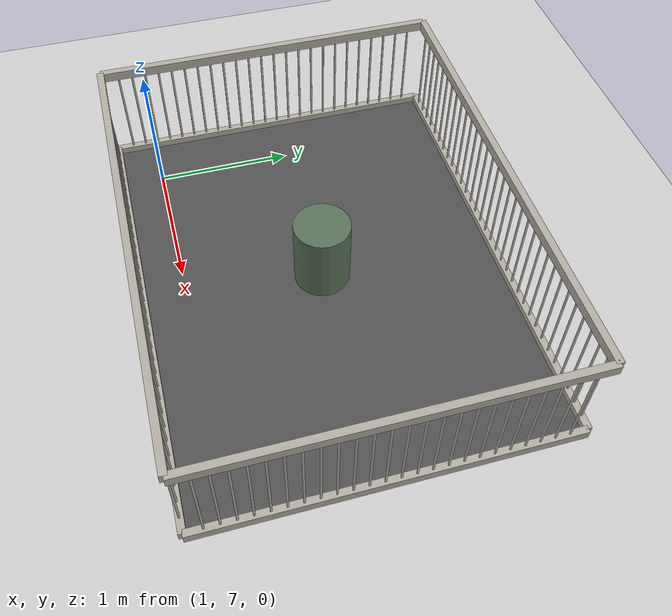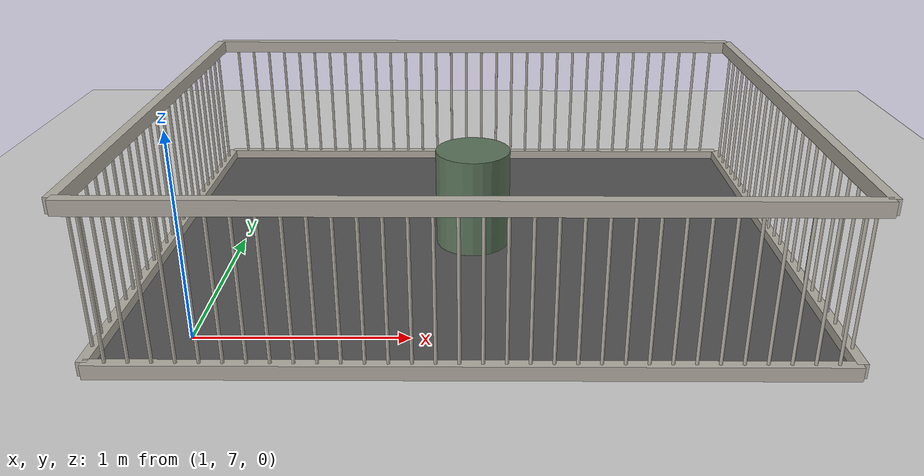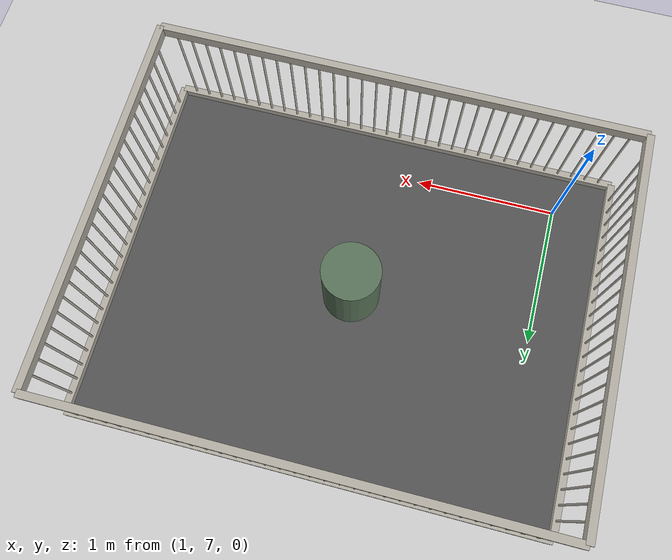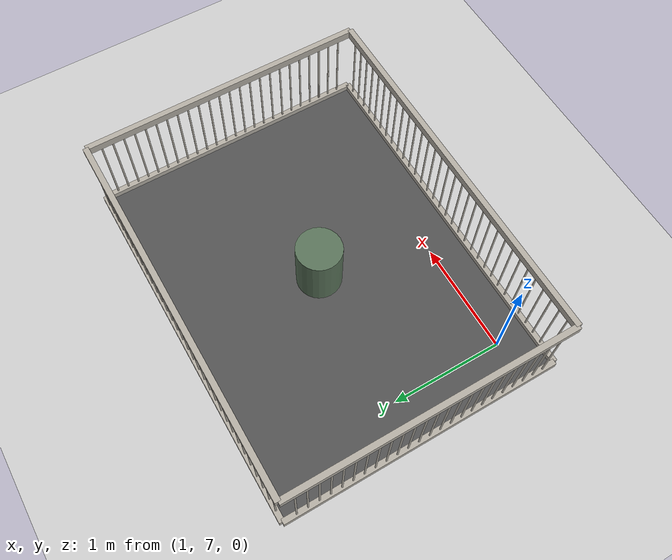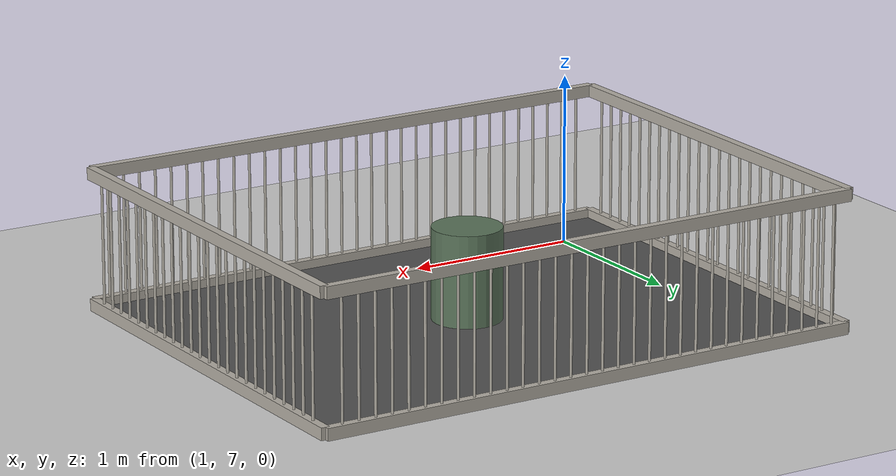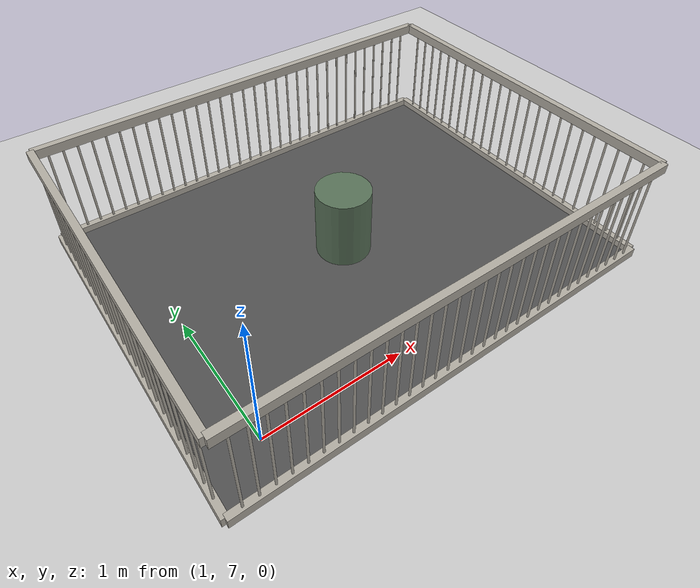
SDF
<sdf version="1.9">
 <world name="pig_pen_16units_world">
  <model name="ground_plane">
   <static>true</static>
   <link name="link">
    <collision name="collision">
     <geometry><plane><normal>0 0 1</normal><size>30 30</size></plane></geometry>
     <surface><friction><ode><mu>1.0</mu><mu2>1.0</mu2></ode></friction></surface>
    </collision>
    <visual name="visual">
     <geometry><plane><normal>0 0 1</normal><size>30 30</size></plane></geometry>
     <material>
      <ambient>0.8 0.8 0.8 1</ambient>
      <diffuse>0.8 0.8 0.8 1</diffuse>
      <specular>0.2 0.2 0.2 1</specular>
     </material>
    </visual>
   </link>
  </model>
  <model name="pen16">
   <pose>2.275 7.975 0 0 0 0</pose>
   <static>true</static>
   <link name="floor">
    <pose>0 0 0.01 0 0 0</pose>
    <collision name="collision"><geometry><box><size>3.30 2.55 0.02</size></box></geometry></collision>
    <visual name="visual">
     <geometry><box><size>3.30 2.55 0.02</size></box></geometry>
     <material>
      <ambient>0.25 0.25 0.25 1</ambient>
      <diffuse>0.32 0.32 0.32 1</diffuse>
      <specular>0.05 0.05 0.05 1</specular>
     </material>
    </visual>
   </link>
   <link name="left_wall">
    <pose>0 1.275 0.415 0 0 0</pose>
    <collision name="top_rail_col">
     <pose>0 0 0.38 0 0 0</pose>
     <geometry><box><size>3.30 0.05 0.07</size></box></geometry>
    </collision>
    <visual name="top_rail_vis">
     <pose>0 0 0.38 0 0 0</pose>
     <geometry><box><size>3.30 0.05 0.07</size></box></geometry>
     <material><ambient>0.70 0.68 0.64 1</ambient><diffuse>0.70 0.68 0.64 1</diffuse></material>
    </visual>
    <collision name="bottom_rail_col">
     <pose>0 0 -0.38 0 0 0</pose>
     <geometry><box><size>3.30 0.05 0.07</size></box></geometry>
    </collision>
    <visual name="bottom_rail_vis">
     <pose>0 0 -0.38 0 0 0</pose>
     <geometry><box><size>3.30 0.05 0.07</size></box></geometry>
     <material><ambient>0.70 0.68 0.64 1</ambient><diffuse>0.70 0.68 0.64 1</diffuse></material>
    </visual>
    <collision name="bar_01_col">
     <pose>-1.55 0 0 0 0 0</pose>
     <geometry><cylinder><radius>0.0075</radius><length>0.69</length></cylinder></geometry>
    </collision>
    <visual name="bar_01_vis">
     <pose>-1.55 0 0 0 0 0</pose>
     <geometry><cylinder><radius>0.0075</radius><length>0.69</length></cylinder></geometry>
     <material><ambient>0.70 0.68 0.64 1</ambient><diffuse>0.70 0.68 0.64 1</diffuse></material>
    </visual>
    <collision name="bar_02_col">
     <pose>-1.45 0 0 0 0 0</pose>
     <geometry><cylinder><radius>0.0075</radius><length>0.69</length></cylinder></geometry>
    </collision>
    <visual name="bar_02_vis">
     <pose>-1.45 0 0 0 0 0</pose>
     <geometry><cylinder><radius>0.0075</radius><length>0.69</length></cylinder></geometry>
     <material><ambient>0.70 0.68 0.64 1</ambient><diffuse>0.70 0.68 0.64 1</diffuse></material>
    </visual>
    <collision name="bar_03_col">
     <pose>-1.35 0 0 0 0 0</pose>
     <geometry><cylinder><radius>0.0075</radius><length>0.69</length></cylinder></geometry>
    </collision>
    <visual name="bar_03_vis">
     <pose>-1.35 0 0 0 0 0</pose>
     <geometry><cylinder><radius>0.0075</radius><length>0.69</length></cylinder></geometry>
     <material><ambient>0.70 0.68 0.64 1</ambient><diffuse>0.70 0.68 0.64 1</diffuse></material>
    </visual>
    <collision name="bar_04_col">
     <pose>-1.25 0 0 0 0 0</pose>
     <geometry><cylinder><radius>0.0075</radius><length>0.69</length></cylinder></geometry>
    </collision>
    <visual name="bar_04_vis">
     <pose>-1.25 0 0 0 0 0</pose>
     <geometry><cylinder><radius>0.0075</radius><length>0.69</length></cylinder></geometry>
     <material><ambient>0.70 0.68 0.64 1</ambient><diffuse>0.70 0.68 0.64 1</diffuse></material>
    </visual>
    <collision name="bar_05_col">
     <pose>-1.15 0 0 0 0 0</pose>
     <geometry><cylinder><radius>0.0075</radius><length>0.69</length></cylinder></geometry>
    </collision>
    <visual name="bar_05_vis">
     <pose>-1.15 0 0 0 0 0</pose>
     <geometry><cylinder><radius>0.0075</radius><length>0.69</length></cylinder></geometry>
     <material><ambient>0.70 0.68 0.64 1</ambient><diffuse>0.70 0.68 0.64 1</diffuse></material>
    </visual>
    <collision name="bar_06_col">
     <pose>-1.05 0 0 0 0 0</pose>
     <geometry><cylinder><radius>0.0075</radius><length>0.69</length></cylinder></geometry>
    </collision>
    <visual name="bar_06_vis">
     <pose>-1.05 0 0 0 0 0</pose>
     <geometry><cylinder><radius>0.0075</radius><length>0.69</length></cylinder></geometry>
     <material><ambient>0.70 0.68 0.64 1</ambient><diffuse>0.70 0.68 0.64 1</diffuse></material>
    </visual>
    <collision name="bar_07_col">
     <pose>-0.95 0 0 0 0 0</pose>
     <geometry><cylinder><radius>0.0075</radius><length>0.69</length></cylinder></geometry>
    </collision>
    <visual name="bar_07_vis">
     <pose>-0.95 0 0 0 0 0</pose>
     <geometry><cylinder><radius>0.0075</radius><length>0.69</length></cylinder></geometry>
     <material><ambient>0.70 0.68 0.64 1</ambient><diffuse>0.70 0.68 0.64 1</diffuse></material>
    </visual>
    <collision name="bar_08_col">
     <pose>-0.85 0 0 0 0 0</pose>
     <geometry><cylinder><radius>0.0075</radius><length>0.69</length></cylinder></geometry>
    </collision>
    <visual name="bar_08_vis">
     <pose>-0.85 0 0 0 0 0</pose>
     <geometry><cylinder><radius>0.0075</radius><length>0.69</length></cylinder></geometry>
     <material><ambient>0.70 0.68 0.64 1</ambient><diffuse>0.70 0.68 0.64 1</diffuse></material>
    </visual>
    <collision name="bar_09_col">
     <pose>-0.75 0 0 0 0 0</pose>
     <geometry><cylinder><radius>0.0075</radius><length>0.69</length></cylinder></geometry>
    </collision>
    <visual name="bar_09_vis">
     <pose>-0.75 0 0 0 0 0</pose>
     <geometry><cylinder><radius>0.0075</radius><length>0.69</length></cylinder></geometry>
     <material><ambient>0.70 0.68 0.64 1</ambient><diffuse>0.70 0.68 0.64 1</diffuse></material>
    </visual>
    <collision name="bar_10_col">
     <pose>-0.65 0 0 0 0 0</pose>
     <geometry><cylinder><radius>0.0075</radius><length>0.69</length></cylinder></geometry>
    </collision>
    <visual name="bar_10_vis">
     <pose>-0.65 0 0 0 0 0</pose>
     <geometry><cylinder><radius>0.0075</radius><length>0.69</length></cylinder></geometry>
     <material><ambient>0.70 0.68 0.64 1</ambient><diffuse>0.70 0.68 0.64 1</diffuse></material>
    </visual>
    <collision name="bar_11_col">
     <pose>-0.55 0 0 0 0 0</pose>
     <geometry><cylinder><radius>0.0075</radius><length>0.69</length></cylinder></geometry>
    </collision>
    <visual name="bar_11_vis">
     <pose>-0.55 0 0 0 0 0</pose>
     <geometry><cylinder><radius>0.0075</radius><length>0.69</length></cylinder></geometry>
     <material><ambient>0.70 0.68 0.64 1</ambient><diffuse>0.70 0.68 0.64 1</diffuse></material>
    </visual>
    <collision name="bar_12_col">
     <pose>-0.45 0 0 0 0 0</pose>
     <geometry><cylinder><radius>0.0075</radius><length>0.69</length></cylinder></geometry>
    </collision>
    <visual name="bar_12_vis">
     <pose>-0.45 0 0 0 0 0</pose>
     <geometry><cylinder><radius>0.0075</radius><length>0.69</length></cylinder></geometry>
     <material><ambient>0.70 0.68 0.64 1</ambient><diffuse>0.70 0.68 0.64 1</diffuse></material>
    </visual>
    <collision name="bar_13_col">
     <pose>-0.35 0 0 0 0 0</pose>
     <geometry><cylinder><radius>0.0075</radius><length>0.69</length></cylinder></geometry>
    </collision>
    <visual name="bar_13_vis">
     <pose>-0.35 0 0 0 0 0</pose>
     <geometry><cylinder><radius>0.0075</radius><length>0.69</length></cylinder></geometry>
     <material><ambient>0.70 0.68 0.64 1</ambient><diffuse>0.70 0.68 0.64 1</diffuse></material>
    </visual>
    <collision name="bar_14_col">
     <pose>-0.25 0 0 0 0 0</pose>
     <geometry><cylinder><radius>0.0075</radius><length>0.69</length></cylinder></geometry>
    </collision>
    <visual name="bar_14_vis">
     <pose>-0.25 0 0 0 0 0</pose>
     <geometry><cylinder><radius>0.0075</radius><length>0.69</length></cylinder></geometry>
     <material><ambient>0.70 0.68 0.64 1</ambient><diffuse>0.70 0.68 0.64 1</diffuse></material>
    </visual>
    <collision name="bar_15_col">
     <pose>-0.15 0 0 0 0 0</pose>
     <geometry><cylinder><radius>0.0075</radius><length>0.69</length></cylinder></geometry>
    </collision>
    <visual name="bar_15_vis">
     <pose>-0.15 0 0 0 0 0</pose>
     <geometry><cylinder><radius>0.0075</radius><length>0.69</length></cylinder></geometry>
     <material><ambient>0.70 0.68 0.64 1</ambient><diffuse>0.70 0.68 0.64 1</diffuse></material>
    </visual>
    <collision name="bar_16_col">
     <pose>-0.05 0 0 0 0 0</pose>
     <geometry><cylinder><radius>0.0075</radius><length>0.69</length></cylinder></geometry>
    </collision>
    <visual name="bar_16_vis">
     <pose>-0.05 0 0 0 0 0</pose>
     <geometry><cylinder><radius>0.0075</radius><length>0.69</length></cylinder></geometry>
     <material><ambient>0.70 0.68 0.64 1</ambient><diffuse>0.70 0.68 0.64 1</diffuse></material>
    </visual>
    <collision name="bar_17_col">
     <pose>0.05 0 0 0 0 0</pose>
     <geometry><cylinder><radius>0.0075</radius><length>0.69</length></cylinder></geometry>
    </collision>
    <visual name="bar_17_vis">
     <pose>0.05 0 0 0 0 0</pose>
     <geometry><cylinder><radius>0.0075</radius><length>0.69</length></cylinder></geometry>
     <material><ambient>0.70 0.68 0.64 1</ambient><diffuse>0.70 0.68 0.64 1</diffuse></material>
    </visual>
    <collision name="bar_18_col">
     <pose>0.15 0 0 0 0 0</pose>
     <geometry><cylinder><radius>0.0075</radius><length>0.69</length></cylinder></geometry>
    </collision>
    <visual name="bar_18_vis">
     <pose>0.15 0 0 0 0 0</pose>
     <geometry><cylinder><radius>0.0075</radius><length>0.69</length></cylinder></geometry>
     <material><ambient>0.70 0.68 0.64 1</ambient><diffuse>0.70 0.68 0.64 1</diffuse></material>
    </visual>
    <collision name="bar_19_col">
     <pose>0.25 0 0 0 0 0</pose>
     <geometry><cylinder><radius>0.0075</radius><length>0.69</length></cylinder></geometry>
    </collision>
    <visual name="bar_19_vis">
     <pose>0.25 0 0 0 0 0</pose>
     <geometry><cylinder><radius>0.0075</radius><length>0.69</length></cylinder></geometry>
     <material><ambient>0.70 0.68 0.64 1</ambient><diffuse>0.70 0.68 0.64 1</diffuse></material>
    </visual>
    <collision name="bar_20_col">
     <pose>0.35 0 0 0 0 0</pose>
     <geometry><cylinder><radius>0.0075</radius><length>0.69</length></cylinder></geometry>
    </collision>
    <visual name="bar_20_vis">
     <pose>0.35 0 0 0 0 0</pose>
     <geometry><cylinder><radius>0.0075</radius><length>0.69</length></cylinder></geometry>
     <material><ambient>0.70 0.68 0.64 1</ambient><diffuse>0.70 0.68 0.64 1</diffuse></material>
    </visual>
    <collision name="bar_21_col">
     <pose>0.45 0 0 0 0 0</pose>
     <geometry><cylinder><radius>0.0075</radius><length>0.69</length></cylinder></geometry>
    </collision>
    <visual name="bar_21_vis">
     <pose>0.45 0 0 0 0 0</pose>
     <geometry><cylinder><radius>0.0075</radius><length>0.69</length></cylinder></geometry>
     <material><ambient>0.70 0.68 0.64 1</ambient><diffuse>0.70 0.68 0.64 1</diffuse></material>
    </visual>
    <collision name="bar_22_col">
     <pose>0.55 0 0 0 0 0</pose>
     <geometry><cylinder><radius>0.0075</radius><length>0.69</length></cylinder></geometry>
    </collision>
    <visual name="bar_22_vis">
     <pose>0.55 0 0 0 0 0</pose>
     <geometry><cylinder><radius>0.0075</radius><length>0.69</length></cylinder></geometry>
     <material><ambient>0.70 0.68 0.64 1</ambient><diffuse>0.70 0.68 0.64 1</diffuse></material>
    </visual>
    <collision name="bar_23_col">
     <pose>0.65 0 0 0 0 0</pose>
     <geometry><cylinder><radius>0.0075</radius><length>0.69</length></cylinder></geometry>
    </collision>
    <visual name="bar_23_vis">
     <pose>0.65 0 0 0 0 0</pose>
     <geometry><cylinder><radius>0.0075</radius><length>0.69</length></cylinder></geometry>
     <material><ambient>0.70 0.68 0.64 1</ambient><diffuse>0.70 0.68 0.64 1</diffuse></material>
    </visual>
    <collision name="bar_24_col">
     <pose>0.75 0 0 0 0 0</pose>
     <geometry><cylinder><radius>0.0075</radius><length>0.69</length></cylinder></geometry>
    </collision>
    <visual name="bar_24_vis">
     <pose>0.75 0 0 0 0 0</pose>
     <geometry><cylinder><radius>0.0075</radius><length>0.69</length></cylinder></geometry>
     <material><ambient>0.70 0.68 0.64 1</ambient><diffuse>0.70 0.68 0.64 1</diffuse></material>
    </visual>
    <collision name="bar_25_col">
     <pose>0.85 0 0 0 0 0</pose>
     <geometry><cylinder><radius>0.0075</radius><length>0.69</length></cylinder></geometry>
    </collision>
    <visual name="bar_25_vis">
     <pose>0.85 0 0 0 0 0</pose>
     <geometry><cylinder><radius>0.0075</radius><length>0.69</length></cylinder></geometry>
     <material><ambient>0.70 0.68 0.64 1</ambient><diffuse>0.70 0.68 0.64 1</diffuse></material>
    </visual>
    <collision name="bar_26_col">
     <pose>0.95 0 0 0 0 0</pose>
     <geometry><cylinder><radius>0.0075</radius><length>0.69</length></cylinder></geometry>
    </collision>
    <visual name="bar_26_vis">
     <pose>0.95 0 0 0 0 0</pose>
     <geometry><cylinder><radius>0.0075</radius><length>0.69</length></cylinder></geometry>
     <material><ambient>0.70 0.68 0.64 1</ambient><diffuse>0.70 0.68 0.64 1</diffuse></material>
    </visual>
    <collision name="bar_27_col">
     <pose>1.05 0 0 0 0 0</pose>
     <geometry><cylinder><radius>0.0075</radius><length>0.69</length></cylinder></geometry>
    </collision>
    <visual name="bar_27_vis">
     <pose>1.05 0 0 0 0 0</pose>
     <geometry><cylinder><radius>0.0075</radius><length>0.69</length></cylinder></geometry>
     <material><ambient>0.70 0.68 0.64 1</ambient><diffuse>0.70 0.68 0.64 1</diffuse></material>
    </visual>
    <collision name="bar_28_col">
     <pose>1.15 0 0 0 0 0</pose>
     <geometry><cylinder><radius>0.0075</radius><length>0.69</length></cylinder></geometry>
    </collision>
    <visual name="bar_28_vis">
     <pose>1.15 0 0 0 0 0</pose>
     <geometry><cylinder><radius>0.0075</radius><length>0.69</length></cylinder></geometry>
     <material><ambient>0.70 0.68 0.64 1</ambient><diffuse>0.70 0.68 0.64 1</diffuse></material>
    </visual>
    <collision name="bar_29_col">
     <pose>1.25 0 0 0 0 0</pose>
     <geometry><cylinder><radius>0.0075</radius><length>0.69</length></cylinder></geometry>
    </collision>
    <visual name="bar_29_vis">
     <pose>1.25 0 0 0 0 0</pose>
     <geometry><cylinder><radius>0.0075</radius><length>0.69</length></cylinder></geometry>
     <material><ambient>0.70 0.68 0.64 1</ambient><diffuse>0.70 0.68 0.64 1</diffuse></material>
    </visual>
    <collision name="bar_30_col">
     <pose>1.35 0 0 0 0 0</pose>
     <geometry><cylinder><radius>0.0075</radius><length>0.69</length></cylinder></geometry>
    </collision>
    <visual name="bar_30_vis">
     <pose>1.35 0 0 0 0 0</pose>
     <geometry><cylinder><radius>0.0075</radius><length>0.69</length></cylinder></geometry>
     <material><ambient>0.70 0.68 0.64 1</ambient><diffuse>0.70 0.68 0.64 1</diffuse></material>
    </visual>
    <collision name="bar_31_col">
     <pose>1.45 0 0 0 0 0</pose>
     <geometry><cylinder><radius>0.0075</radius><length>0.69</length></cylinder></geometry>
    </collision>
    <visual name="bar_31_vis">
     <pose>1.45 0 0 0 0 0</pose>
     <geometry><cylinder><radius>0.0075</radius><length>0.69</length></cylinder></geometry>
     <material><ambient>0.70 0.68 0.64 1</ambient><diffuse>0.70 0.68 0.64 1</diffuse></material>
    </visual>
    <collision name="bar_32_col">
     <pose>1.55 0 0 0 0 0</pose>
     <geometry><cylinder><radius>0.0075</radius><length>0.69</length></cylinder></geometry>
    </collision>
    <visual name="bar_32_vis">
     <pose>1.55 0 0 0 0 0</pose>
     <geometry><cylinder><radius>0.0075</radius><length>0.69</length></cylinder></geometry>
     <material><ambient>0.70 0.68 0.64 1</ambient><diffuse>0.70 0.68 0.64 1</diffuse></material>
    </visual>
   </link>
   <link name="right_wall">
    <pose>0 -1.275 0.415 0 0 0</pose>
    <collision name="top_rail_col">
     <pose>0 0 0.38 0 0 0</pose>
     <geometry><box><size>3.30 0.05 0.07</size></box></geometry>
    </collision>
    <visual name="top_rail_vis">
     <pose>0 0 0.38 0 0 0</pose>
     <geometry><box><size>3.30 0.05 0.07</size></box></geometry>
     <material><ambient>0.70 0.68 0.64 1</ambient><diffuse>0.70 0.68 0.64 1</diffuse></material>
    </visual>
    <collision name="bottom_rail_col">
     <pose>0 0 -0.38 0 0 0</pose>
     <geometry><box><size>3.30 0.05 0.07</size></box></geometry>
    </collision>
    <visual name="bottom_rail_vis">
     <pose>0 0 -0.38 0 0 0</pose>
     <geometry><box><size>3.30 0.05 0.07</size></box></geometry>
     <material><ambient>0.70 0.68 0.64 1</ambient><diffuse>0.70 0.68 0.64 1</diffuse></material>
    </visual>
    <collision name="bar_01_col">
     <pose>-1.55 0 0 0 0 0</pose>
     <geometry><cylinder><radius>0.0075</radius><length>0.69</length></cylinder></geometry>
    </collision>
    <visual name="bar_01_vis">
     <pose>-1.55 0 0 0 0 0</pose>
     <geometry><cylinder><radius>0.0075</radius><length>0.69</length></cylinder></geometry>
     <material><ambient>0.70 0.68 0.64 1</ambient><diffuse>0.70 0.68 0.64 1</diffuse></material>
    </visual>
    <collision name="bar_02_col">
     <pose>-1.45 0 0 0 0 0</pose>
     <geometry><cylinder><radius>0.0075</radius><length>0.69</length></cylinder></geometry>
    </collision>
    <visual name="bar_02_vis">
     <pose>-1.45 0 0 0 0 0</pose>
     <geometry><cylinder><radius>0.0075</radius><length>0.69</length></cylinder></geometry>
     <material><ambient>0.70 0.68 0.64 1</ambient><diffuse>0.70 0.68 0.64 1</diffuse></material>
    </visual>
    <collision name="bar_03_col">
     <pose>-1.35 0 0 0 0 0</pose>
     <geometry><cylinder><radius>0.0075</radius><length>0.69</length></cylinder></geometry>
    </collision>
    <visual name="bar_03_vis">
     <pose>-1.35 0 0 0 0 0</pose>
     <geometry><cylinder><radius>0.0075</radius><length>0.69</length></cylinder></geometry>
     <material><ambient>0.70 0.68 0.64 1</ambient><diffuse>0.70 0.68 0.64 1</diffuse></material>
    </visual>
    <collision name="bar_04_col">
     <pose>-1.25 0 0 0 0 0</pose>
     <geometry><cylinder><radius>0.0075</radius><length>0.69</length></cylinder></geometry>
    </collision>
    <visual name="bar_04_vis">
     <pose>-1.25 0 0 0 0 0</pose>
     <geometry><cylinder><radius>0.0075</radius><length>0.69</length></cylinder></geometry>
     <material><ambient>0.70 0.68 0.64 1</ambient><diffuse>0.70 0.68 0.64 1</diffuse></material>
    </visual>
    <collision name="bar_05_col">
     <pose>-1.15 0 0 0 0 0</pose>
     <geometry><cylinder><radius>0.0075</radius><length>0.69</length></cylinder></geometry>
    </collision>
    <visual name="bar_05_vis">
     <pose>-1.15 0 0 0 0 0</pose>
     <geometry><cylinder><radius>0.0075</radius><length>0.69</length></cylinder></geometry>
     <material><ambient>0.70 0.68 0.64 1</ambient><diffuse>0.70 0.68 0.64 1</diffuse></material>
    </visual>
    <collision name="bar_06_col">
     <pose>-1.05 0 0 0 0 0</pose>
     <geometry><cylinder><radius>0.0075</radius><length>0.69</length></cylinder></geometry>
    </collision>
    <visual name="bar_06_vis">
     <pose>-1.05 0 0 0 0 0</pose>
     <geometry><cylinder><radius>0.0075</radius><length>0.69</length></cylinder></geometry>
     <material><ambient>0.70 0.68 0.64 1</ambient><diffuse>0.70 0.68 0.64 1</diffuse></material>
    </visual>
    <collision name="bar_07_col">
     <pose>-0.95 0 0 0 0 0</pose>
     <geometry><cylinder><radius>0.0075</radius><length>0.69</length></cylinder></geometry>
    </collision>
    <visual name="bar_07_vis">
     <pose>-0.95 0 0 0 0 0</pose>
     <geometry><cylinder><radius>0.0075</radius><length>0.69</length></cylinder></geometry>
     <material><ambient>0.70 0.68 0.64 1</ambient><diffuse>0.70 0.68 0.64 1</diffuse></material>
    </visual>
    <collision name="bar_08_col">
     <pose>-0.85 0 0 0 0 0</pose>
     <geometry><cylinder><radius>0.0075</radius><length>0.69</length></cylinder></geometry>
    </collision>
    <visual name="bar_08_vis">
     <pose>-0.85 0 0 0 0 0</pose>
     <geometry><cylinder><radius>0.0075</radius><length>0.69</length></cylinder></geometry>
     <material><ambient>0.70 0.68 0.64 1</ambient><diffuse>0.70 0.68 0.64 1</diffuse></material>
    </visual>
    <collision name="bar_09_col">
     <pose>-0.75 0 0 0 0 0</pose>
     <geometry><cylinder><radius>0.0075</radius><length>0.69</length></cylinder></geometry>
    </collision>
    <visual name="bar_09_vis">
     <pose>-0.75 0 0 0 0 0</pose>
     <geometry><cylinder><radius>0.0075</radius><length>0.69</length></cylinder></geometry>
     <material><ambient>0.70 0.68 0.64 1</ambient><diffuse>0.70 0.68 0.64 1</diffuse></material>
    </visual>
    <collision name="bar_10_col">
     <pose>-0.65 0 0 0 0 0</pose>
     <geometry><cylinder><radius>0.0075</radius><length>0.69</length></cylinder></geometry>
    </collision>
    <visual name="bar_10_vis">
     <pose>-0.65 0 0 0 0 0</pose>
     <geometry><cylinder><radius>0.0075</radius><length>0.69</length></cylinder></geometry>
     <material><ambient>0.70 0.68 0.64 1</ambient><diffuse>0.70 0.68 0.64 1</diffuse></material>
    </visual>
    <collision name="bar_11_col">
     <pose>-0.55 0 0 0 0 0</pose>
     <geometry><cylinder><radius>0.0075</radius><length>0.69</length></cylinder></geometry>
    </collision>
    <visual name="bar_11_vis">
     <pose>-0.55 0 0 0 0 0</pose>
     <geometry><cylinder><radius>0.0075</radius><length>0.69</length></cylinder></geometry>
     <material><ambient>0.70 0.68 0.64 1</ambient><diffuse>0.70 0.68 0.64 1</diffuse></material>
    </visual>
    <collision name="bar_12_col">
     <pose>-0.45 0 0 0 0 0</pose>
     <geometry><cylinder><radius>0.0075</radius><length>0.69</length></cylinder></geometry>
    </collision>
    <visual name="bar_12_vis">
     <pose>-0.45 0 0 0 0 0</pose>
     <geometry><cylinder><radius>0.0075</radius><length>0.69</length></cylinder></geometry>
     <material><ambient>0.70 0.68 0.64 1</ambient><diffuse>0.70 0.68 0.64 1</diffuse></material>
    </visual>
    <collision name="bar_13_col">
     <pose>-0.35 0 0 0 0 0</pose>
     <geometry><cylinder><radius>0.0075</radius><length>0.69</length></cylinder></geometry>
    </collision>
    <visual name="bar_13_vis">
     <pose>-0.35 0 0 0 0 0</pose>
     <geometry><cylinder><radius>0.0075</radius><length>0.69</length></cylinder></geometry>
     <material><ambient>0.70 0.68 0.64 1</ambient><diffuse>0.70 0.68 0.64 1</diffuse></material>
    </visual>
    <collision name="bar_14_col">
     <pose>-0.25 0 0 0 0 0</pose>
     <geometry><cylinder><radius>0.0075</radius><length>0.69</length></cylinder></geometry>
    </collision>
    <visual name="bar_14_vis">
     <pose>-0.25 0 0 0 0 0</pose>
     <geometry><cylinder><radius>0.0075</radius><length>0.69</length></cylinder></geometry>
     <material><ambient>0.70 0.68 0.64 1</ambient><diffuse>0.70 0.68 0.64 1</diffuse></material>
    </visual>
    <collision name="bar_15_col">
     <pose>-0.15 0 0 0 0 0</pose>
     <geometry><cylinder><radius>0.0075</radius><length>0.69</length></cylinder></geometry>
    </collision>
    <visual name="bar_15_vis">
     <pose>-0.15 0 0 0 0 0</pose>
     <geometry><cylinder><radius>0.0075</radius><length>0.69</length></cylinder></geometry>
     <material><ambient>0.70 0.68 0.64 1</ambient><diffuse>0.70 0.68 0.64 1</diffuse></material>
    </visual>
    <collision name="bar_16_col">
     <pose>-0.05 0 0 0 0 0</pose>
     <geometry><cylinder><radius>0.0075</radius><length>0.69</length></cylinder></geometry>
    </collision>
    <visual name="bar_16_vis">
     <pose>-0.05 0 0 0 0 0</pose>
     <geometry><cylinder><radius>0.0075</radius><length>0.69</length></cylinder></geometry>
     <material><ambient>0.70 0.68 0.64 1</ambient><diffuse>0.70 0.68 0.64 1</diffuse></material>
    </visual>
    <collision name="bar_17_col">
     <pose>0.05 0 0 0 0 0</pose>
     <geometry><cylinder><radius>0.0075</radius><length>0.69</length></cylinder></geometry>
    </collision>
    <visual name="bar_17_vis">
     <pose>0.05 0 0 0 0 0</pose>
     <geometry><cylinder><radius>0.0075</radius><length>0.69</length></cylinder></geometry>
     <material><ambient>0.70 0.68 0.64 1</ambient><diffuse>0.70 0.68 0.64 1</diffuse></material>
    </visual>
    <collision name="bar_18_col">
     <pose>0.15 0 0 0 0 0</pose>
     <geometry><cylinder><radius>0.0075</radius><length>0.69</length></cylinder></geometry>
    </collision>
    <visual name="bar_18_vis">
     <pose>0.15 0 0 0 0 0</pose>
     <geometry><cylinder><radius>0.0075</radius><length>0.69</length></cylinder></geometry>
     <material><ambient>0.70 0.68 0.64 1</ambient><diffuse>0.70 0.68 0.64 1</diffuse></material>
    </visual>
    <collision name="bar_19_col">
     <pose>0.25 0 0 0 0 0</pose>
     <geometry><cylinder><radius>0.0075</radius><length>0.69</length></cylinder></geometry>
    </collision>
    <visual name="bar_19_vis">
     <pose>0.25 0 0 0 0 0</pose>
     <geometry><cylinder><radius>0.0075</radius><length>0.69</length></cylinder></geometry>
     <material><ambient>0.70 0.68 0.64 1</ambient><diffuse>0.70 0.68 0.64 1</diffuse></material>
    </visual>
    <collision name="bar_20_col">
     <pose>0.35 0 0 0 0 0</pose>
     <geometry><cylinder><radius>0.0075</radius><length>0.69</length></cylinder></geometry>
    </collision>
    <visual name="bar_20_vis">
     <pose>0.35 0 0 0 0 0</pose>
     <geometry><cylinder><radius>0.0075</radius><length>0.69</length></cylinder></geometry>
     <material><ambient>0.70 0.68 0.64 1</ambient><diffuse>0.70 0.68 0.64 1</diffuse></material>
    </visual>
    <collision name="bar_21_col">
     <pose>0.45 0 0 0 0 0</pose>
     <geometry><cylinder><radius>0.0075</radius><length>0.69</length></cylinder></geometry>
    </collision>
    <visual name="bar_21_vis">
     <pose>0.45 0 0 0 0 0</pose>
     <geometry><cylinder><radius>0.0075</radius><length>0.69</length></cylinder></geometry>
     <material><ambient>0.70 0.68 0.64 1</ambient><diffuse>0.70 0.68 0.64 1</diffuse></material>
    </visual>
    <collision name="bar_22_col">
     <pose>0.55 0 0 0 0 0</pose>
     <geometry><cylinder><radius>0.0075</radius><length>0.69</length></cylinder></geometry>
    </collision>
    <visual name="bar_22_vis">
     <pose>0.55 0 0 0 0 0</pose>
     <geometry><cylinder><radius>0.0075</radius><length>0.69</length></cylinder></geometry>
     <material><ambient>0.70 0.68 0.64 1</ambient><diffuse>0.70 0.68 0.64 1</diffuse></material>
    </visual>
    <collision name="bar_23_col">
     <pose>0.65 0 0 0 0 0</pose>
     <geometry><cylinder><radius>0.0075</radius><length>0.69</length></cylinder></geometry>
    </collision>
    <visual name="bar_23_vis">
     <pose>0.65 0 0 0 0 0</pose>
     <geometry><cylinder><radius>0.0075</radius><length>0.69</length></cylinder></geometry>
     <material><ambient>0.70 0.68 0.64 1</ambient><diffuse>0.70 0.68 0.64 1</diffuse></material>
    </visual>
    <collision name="bar_24_col">
     <pose>0.75 0 0 0 0 0</pose>
     <geometry><cylinder><radius>0.0075</radius><length>0.69</length></cylinder></geometry>
    </collision>
    <visual name="bar_24_vis">
     <pose>0.75 0 0 0 0 0</pose>
     <geometry><cylinder><radius>0.0075</radius><length>0.69</length></cylinder></geometry>
     <material><ambient>0.70 0.68 0.64 1</ambient><diffuse>0.70 0.68 0.64 1</diffuse></material>
    </visual>
    <collision name="bar_25_col">
     <pose>0.85 0 0 0 0 0</pose>
     <geometry><cylinder><radius>0.0075</radius><length>0.69</length></cylinder></geometry>
    </collision>
    <visual name="bar_25_vis">
     <pose>0.85 0 0 0 0 0</pose>
     <geometry><cylinder><radius>0.0075</radius><length>0.69</length></cylinder></geometry>
     <material><ambient>0.70 0.68 0.64 1</ambient><diffuse>0.70 0.68 0.64 1</diffuse></material>
    </visual>
    <collision name="bar_26_col">
     <pose>0.95 0 0 0 0 0</pose>
     <geometry><cylinder><radius>0.0075</radius><length>0.69</length></cylinder></geometry>
    </collision>
    <visual name="bar_26_vis">
     <pose>0.95 0 0 0 0 0</pose>
     <geometry><cylinder><radius>0.0075</radius><length>0.69</length></cylinder></geometry>
     <material><ambient>0.70 0.68 0.64 1</ambient><diffuse>0.70 0.68 0.64 1</diffuse></material>
    </visual>
    <collision name="bar_27_col">
     <pose>1.05 0 0 0 0 0</pose>
     <geometry><cylinder><radius>0.0075</radius><length>0.69</length></cylinder></geometry>
    </collision>
    <visual name="bar_27_vis">
     <pose>1.05 0 0 0 0 0</pose>
     <geometry><cylinder><radius>0.0075</radius><length>0.69</length></cylinder></geometry>
     <material><ambient>0.70 0.68 0.64 1</ambient><diffuse>0.70 0.68 0.64 1</diffuse></material>
    </visual>
    <collision name="bar_28_col">
     <pose>1.15 0 0 0 0 0</pose>
     <geometry><cylinder><radius>0.0075</radius><length>0.69</length></cylinder></geometry>
    </collision>
    <visual name="bar_28_vis">
     <pose>1.15 0 0 0 0 0</pose>
     <geometry><cylinder><radius>0.0075</radius><length>0.69</length></cylinder></geometry>
     <material><ambient>0.70 0.68 0.64 1</ambient><diffuse>0.70 0.68 0.64 1</diffuse></material>
    </visual>
    <collision name="bar_29_col">
     <pose>1.25 0 0 0 0 0</pose>
     <geometry><cylinder><radius>0.0075</radius><length>0.69</length></cylinder></geometry>
    </collision>
    <visual name="bar_29_vis">
     <pose>1.25 0 0 0 0 0</pose>
     <geometry><cylinder><radius>0.0075</radius><length>0.69</length></cylinder></geometry>
     <material><ambient>0.70 0.68 0.64 1</ambient><diffuse>0.70 0.68 0.64 1</diffuse></material>
    </visual>
    <collision name="bar_30_col">
     <pose>1.35 0 0 0 0 0</pose>
     <geometry><cylinder><radius>0.0075</radius><length>0.69</length></cylinder></geometry>
    </collision>
    <visual name="bar_30_vis">
     <pose>1.35 0 0 0 0 0</pose>
     <geometry><cylinder><radius>0.0075</radius><length>0.69</length></cylinder></geometry>
     <material><ambient>0.70 0.68 0.64 1</ambient><diffuse>0.70 0.68 0.64 1</diffuse></material>
    </visual>
    <collision name="bar_31_col">
     <pose>1.45 0 0 0 0 0</pose>
     <geometry><cylinder><radius>0.0075</radius><length>0.69</length></cylinder></geometry>
    </collision>
    <visual name="bar_31_vis">
     <pose>1.45 0 0 0 0 0</pose>
     <geometry><cylinder><radius>0.0075</radius><length>0.69</length></cylinder></geometry>
     <material><ambient>0.70 0.68 0.64 1</ambient><diffuse>0.70 0.68 0.64 1</diffuse></material>
    </visual>
    <collision name="bar_32_col">
     <pose>1.55 0 0 0 0 0</pose>
     <geometry><cylinder><radius>0.0075</radius><length>0.69</length></cylinder></geometry>
    </collision>
    <visual name="bar_32_vis">
     <pose>1.55 0 0 0 0 0</pose>
     <geometry><cylinder><radius>0.0075</radius><length>0.69</length></cylinder></geometry>
     <material><ambient>0.70 0.68 0.64 1</ambient><diffuse>0.70 0.68 0.64 1</diffuse></material>
    </visual>
   </link>
   <link name="back_wall">
    <pose>1.65 0 0.415 0 0 0</pose>
    <collision name="top_rail_col">
     <pose>0 0 0.38 0 0 0</pose>
     <geometry><box><size>0.05 2.55 0.07</size></box></geometry>
    </collision>
    <visual name="top_rail_vis">
     <pose>0 0 0.38 0 0 0</pose>
     <geometry><box><size>0.05 2.55 0.07</size></box></geometry>
     <material><ambient>0.70 0.68 0.64 1</ambient><diffuse>0.70 0.68 0.64 1</diffuse></material>
    </visual>
    <collision name="bottom_rail_col">
     <pose>0 0 -0.38 0 0 0</pose>
     <geometry><box><size>0.05 2.55 0.07</size></box></geometry>
    </collision>
    <visual name="bottom_rail_vis">
     <pose>0 0 -0.38 0 0 0</pose>
     <geometry><box><size>0.05 2.55 0.07</size></box></geometry>
     <material><ambient>0.70 0.68 0.64 1</ambient><diffuse>0.70 0.68 0.64 1</diffuse></material>
    </visual>
    <collision name="bar_01_col">
     <pose>0 -1.15 0 0 0 0</pose>
     <geometry><cylinder><radius>0.0075</radius><length>0.69</length></cylinder></geometry>
    </collision>
    <visual name="bar_01_vis">
     <pose>0 -1.15 0 0 0 0</pose>
     <geometry><cylinder><radius>0.0075</radius><length>0.69</length></cylinder></geometry>
     <material><ambient>0.70 0.68 0.64 1</ambient><diffuse>0.70 0.68 0.64 1</diffuse></material>
    </visual>
    <collision name="bar_02_col">
     <pose>0 -1.05 0 0 0 0</pose>
     <geometry><cylinder><radius>0.0075</radius><length>0.69</length></cylinder></geometry>
    </collision>
    <visual name="bar_02_vis">
     <pose>0 -1.05 0 0 0 0</pose>
     <geometry><cylinder><radius>0.0075</radius><length>0.69</length></cylinder></geometry>
     <material><ambient>0.70 0.68 0.64 1</ambient><diffuse>0.70 0.68 0.64 1</diffuse></material>
    </visual>
    <collision name="bar_03_col">
     <pose>0 -0.95 0 0 0 0</pose>
     <geometry><cylinder><radius>0.0075</radius><length>0.69</length></cylinder></geometry>
    </collision>
    <visual name="bar_03_vis">
     <pose>0 -0.95 0 0 0 0</pose>
     <geometry><cylinder><radius>0.0075</radius><length>0.69</length></cylinder></geometry>
     <material><ambient>0.70 0.68 0.64 1</ambient><diffuse>0.70 0.68 0.64 1</diffuse></material>
    </visual>
    <collision name="bar_04_col">
     <pose>0 -0.85 0 0 0 0</pose>
     <geometry><cylinder><radius>0.0075</radius><length>0.69</length></cylinder></geometry>
    </collision>
    <visual name="bar_04_vis">
     <pose>0 -0.85 0 0 0 0</pose>
     <geometry><cylinder><radius>0.0075</radius><length>0.69</length></cylinder></geometry>
     <material><ambient>0.70 0.68 0.64 1</ambient><diffuse>0.70 0.68 0.64 1</diffuse></material>
    </visual>
    <collision name="bar_05_col">
     <pose>0 -0.75 0 0 0 0</pose>
     <geometry><cylinder><radius>0.0075</radius><length>0.69</length></cylinder></geometry>
    </collision>
    <visual name="bar_05_vis">
     <pose>0 -0.75 0 0 0 0</pose>
     <geometry><cylinder><radius>0.0075</radius><length>0.69</length></cylinder></geometry>
     <material><ambient>0.70 0.68 0.64 1</ambient><diffuse>0.70 0.68 0.64 1</diffuse></material>
    </visual>
    <collision name="bar_06_col">
     <pose>0 -0.65 0 0 0 0</pose>
     <geometry><cylinder><radius>0.0075</radius><length>0.69</length></cylinder></geometry>
    </collision>
    <visual name="bar_06_vis">
     <pose>0 -0.65 0 0 0 0</pose>
     <geometry><cylinder><radius>0.0075</radius><length>0.69</length></cylinder></geometry>
     <material><ambient>0.70 0.68 0.64 1</ambient><diffuse>0.70 0.68 0.64 1</diffuse></material>
    </visual>
    <collision name="bar_07_col">
     <pose>0 -0.55 0 0 0 0</pose>
     <geometry><cylinder><radius>0.0075</radius><length>0.69</length></cylinder></geometry>
    </collision>
    <visual name="bar_07_vis">
     <pose>0 -0.55 0 0 0 0</pose>
     <geometry><cylinder><radius>0.0075</radius><length>0.69</length></cylinder></geometry>
     <material><ambient>0.70 0.68 0.64 1</ambient><diffuse>0.70 0.68 0.64 1</diffuse></material>
    </visual>
    <collision name="bar_08_col">
     <pose>0 -0.45 0 0 0 0</pose>
     <geometry><cylinder><radius>0.0075</radius><length>0.69</length></cylinder></geometry>
    </collision>
    <visual name="bar_08_vis">
     <pose>0 -0.45 0 0 0 0</pose>
     <geometry><cylinder><radius>0.0075</radius><length>0.69</length></cylinder></geometry>
     <material><ambient>0.70 0.68 0.64 1</ambient><diffuse>0.70 0.68 0.64 1</diffuse></material>
    </visual>
    <collision name="bar_09_col">
     <pose>0 -0.35 0 0 0 0</pose>
     <geometry><cylinder><radius>0.0075</radius><length>0.69</length></cylinder></geometry>
    </collision>
    <visual name="bar_09_vis">
     <pose>0 -0.35 0 0 0 0</pose>
     <geometry><cylinder><radius>0.0075</radius><length>0.69</length></cylinder></geometry>
     <material><ambient>0.70 0.68 0.64 1</ambient><diffuse>0.70 0.68 0.64 1</diffuse></material>
    </visual>
    <collision name="bar_10_col">
     <pose>0 -0.25 0 0 0 0</pose>
     <geometry><cylinder><radius>0.0075</radius><length>0.69</length></cylinder></geometry>
    </collision>
    <visual name="bar_10_vis">
     <pose>0 -0.25 0 0 0 0</pose>
     <geometry><cylinder><radius>0.0075</radius><length>0.69</length></cylinder></geometry>
     <material><ambient>0.70 0.68 0.64 1</ambient><diffuse>0.70 0.68 0.64 1</diffuse></material>
    </visual>
    <collision name="bar_11_col">
     <pose>0 -0.15 0 0 0 0</pose>
     <geometry><cylinder><radius>0.0075</radius><length>0.69</length></cylinder></geometry>
    </collision>
    <visual name="bar_11_vis">
     <pose>0 -0.15 0 0 0 0</pose>
     <geometry><cylinder><radius>0.0075</radius><length>0.69</length></cylinder></geometry>
     <material><ambient>0.70 0.68 0.64 1</ambient><diffuse>0.70 0.68 0.64 1</diffuse></material>
    </visual>
    <collision name="bar_12_col">
     <pose>0 -0.05 0 0 0 0</pose>
     <geometry><cylinder><radius>0.0075</radius><length>0.69</length></cylinder></geometry>
    </collision>
    <visual name="bar_12_vis">
     <pose>0 -0.05 0 0 0 0</pose>
     <geometry><cylinder><radius>0.0075</radius><length>0.69</length></cylinder></geometry>
     <material><ambient>0.70 0.68 0.64 1</ambient><diffuse>0.70 0.68 0.64 1</diffuse></material>
    </visual>
    <collision name="bar_13_col">
     <pose>0 0.05 0 0 0 0</pose>
     <geometry><cylinder><radius>0.0075</radius><length>0.69</length></cylinder></geometry>
    </collision>
    <visual name="bar_13_vis">
     <pose>0 0.05 0 0 0 0</pose>
     <geometry><cylinder><radius>0.0075</radius><length>0.69</length></cylinder></geometry>
     <material><ambient>0.70 0.68 0.64 1</ambient><diffuse>0.70 0.68 0.64 1</diffuse></material>
    </visual>
    <collision name="bar_14_col">
     <pose>0 0.15 0 0 0 0</pose>
     <geometry><cylinder><radius>0.0075</radius><length>0.69</length></cylinder></geometry>
    </collision>
    <visual name="bar_14_vis">
     <pose>0 0.15 0 0 0 0</pose>
     <geometry><cylinder><radius>0.0075</radius><length>0.69</length></cylinder></geometry>
     <material><ambient>0.70 0.68 0.64 1</ambient><diffuse>0.70 0.68 0.64 1</diffuse></material>
    </visual>
    <collision name="bar_15_col">
     <pose>0 0.25 0 0 0 0</pose>
     <geometry><cylinder><radius>0.0075</radius><length>0.69</length></cylinder></geometry>
    </collision>
    <visual name="bar_15_vis">
     <pose>0 0.25 0 0 0 0</pose>
     <geometry><cylinder><radius>0.0075</radius><length>0.69</length></cylinder></geometry>
     <material><ambient>0.70 0.68 0.64 1</ambient><diffuse>0.70 0.68 0.64 1</diffuse></material>
    </visual>
    <collision name="bar_16_col">
     <pose>0 0.35 0 0 0 0</pose>
     <geometry><cylinder><radius>0.0075</radius><length>0.69</length></cylinder></geometry>
    </collision>
    <visual name="bar_16_vis">
     <pose>0 0.35 0 0 0 0</pose>
     <geometry><cylinder><radius>0.0075</radius><length>0.69</length></cylinder></geometry>
     <material><ambient>0.70 0.68 0.64 1</ambient><diffuse>0.70 0.68 0.64 1</diffuse></material>
    </visual>
    <collision name="bar_17_col">
     <pose>0 0.45 0 0 0 0</pose>
     <geometry><cylinder><radius>0.0075</radius><length>0.69</length></cylinder></geometry>
    </collision>
    <visual name="bar_17_vis">
     <pose>0 0.45 0 0 0 0</pose>
     <geometry><cylinder><radius>0.0075</radius><length>0.69</length></cylinder></geometry>
     <material><ambient>0.70 0.68 0.64 1</ambient><diffuse>0.70 0.68 0.64 1</diffuse></material>
    </visual>
    <collision name="bar_18_col">
     <pose>0 0.55 0 0 0 0</pose>
     <geometry><cylinder><radius>0.0075</radius><length>0.69</length></cylinder></geometry>
    </collision>
    <visual name="bar_18_vis">
     <pose>0 0.55 0 0 0 0</pose>
     <geometry><cylinder><radius>0.0075</radius><length>0.69</length></cylinder></geometry>
     <material><ambient>0.70 0.68 0.64 1</ambient><diffuse>0.70 0.68 0.64 1</diffuse></material>
    </visual>
    <collision name="bar_19_col">
     <pose>0 0.65 0 0 0 0</pose>
     <geometry><cylinder><radius>0.0075</radius><length>0.69</length></cylinder></geometry>
    </collision>
    <visual name="bar_19_vis">
     <pose>0 0.65 0 0 0 0</pose>
     <geometry><cylinder><radius>0.0075</radius><length>0.69</length></cylinder></geometry>
     <material><ambient>0.70 0.68 0.64 1</ambient><diffuse>0.70 0.68 0.64 1</diffuse></material>
    </visual>
    <collision name="bar_20_col">
     <pose>0 0.75 0 0 0 0</pose>
     <geometry><cylinder><radius>0.0075</radius><length>0.69</length></cylinder></geometry>
    </collision>
    <visual name="bar_20_vis">
     <pose>0 0.75 0 0 0 0</pose>
     <geometry><cylinder><radius>0.0075</radius><length>0.69</length></cylinder></geometry>
     <material><ambient>0.70 0.68 0.64 1</ambient><diffuse>0.70 0.68 0.64 1</diffuse></material>
    </visual>
    <collision name="bar_21_col">
     <pose>0 0.85 0 0 0 0</pose>
     <geometry><cylinder><radius>0.0075</radius><length>0.69</length></cylinder></geometry>
    </collision>
    <visual name="bar_21_vis">
     <pose>0 0.85 0 0 0 0</pose>
     <geometry><cylinder><radius>0.0075</radius><length>0.69</length></cylinder></geometry>
     <material><ambient>0.70 0.68 0.64 1</ambient><diffuse>0.70 0.68 0.64 1</diffuse></material>
    </visual>
    <collision name="bar_22_col">
     <pose>0 0.95 0 0 0 0</pose>
     <geometry><cylinder><radius>0.0075</radius><length>0.69</length></cylinder></geometry>
    </collision>
    <visual name="bar_22_vis">
     <pose>0 0.95 0 0 0 0</pose>
     <geometry><cylinder><radius>0.0075</radius><length>0.69</length></cylinder></geometry>
     <material><ambient>0.70 0.68 0.64 1</ambient><diffuse>0.70 0.68 0.64 1</diffuse></material>
    </visual>
    <collision name="bar_23_col">
     <pose>0 1.05 0 0 0 0</pose>
     <geometry><cylinder><radius>0.0075</radius><length>0.69</length></cylinder></geometry>
    </collision>
    <visual name="bar_23_vis">
     <pose>0 1.05 0 0 0 0</pose>
     <geometry><cylinder><radius>0.0075</radius><length>0.69</length></cylinder></geometry>
     <material><ambient>0.70 0.68 0.64 1</ambient><diffuse>0.70 0.68 0.64 1</diffuse></material>
    </visual>
    <collision name="bar_24_col">
     <pose>0 1.15 0 0 0 0</pose>
     <geometry><cylinder><radius>0.0075</radius><length>0.69</length></cylinder></geometry>
    </collision>
    <visual name="bar_24_vis">
     <pose>0 1.15 0 0 0 0</pose>
     <geometry><cylinder><radius>0.0075</radius><length>0.69</length></cylinder></geometry>
     <material><ambient>0.70 0.68 0.64 1</ambient><diffuse>0.70 0.68 0.64 1</diffuse></material>
    </visual>
   </link>
   <link name="front_wall">
    <pose>-1.65 0 0.415 0 0 0</pose>
    <collision name="top_rail_col">
     <pose>0 0 0.38 0 0 0</pose>
     <geometry><box><size>0.05 2.55 0.07</size></box></geometry>
    </collision>
    <visual name="top_rail_vis">
     <pose>0 0 0.38 0 0 0</pose>
     <geometry><box><size>0.05 2.55 0.07</size></box></geometry>
     <material><ambient>0.70 0.68 0.64 1</ambient><diffuse>0.70 0.68 0.64 1</diffuse></material>
    </visual>
    <collision name="bottom_rail_col">
     <pose>0 0 -0.38 0 0 0</pose>
     <geometry><box><size>0.05 2.55 0.07</size></box></geometry>
    </collision>
    <visual name="bottom_rail_vis">
     <pose>0 0 -0.38 0 0 0</pose>
     <geometry><box><size>0.05 2.55 0.07</size></box></geometry>
     <material><ambient>0.70 0.68 0.64 1</ambient><diffuse>0.70 0.68 0.64 1</diffuse></material>
    </visual>
    <collision name="bar_01_col">
     <pose>0 -1.15 0 0 0 0</pose>
     <geometry><cylinder><radius>0.0075</radius><length>0.69</length></cylinder></geometry>
    </collision>
    <visual name="bar_01_vis">
     <pose>0 -1.15 0 0 0 0</pose>
     <geometry><cylinder><radius>0.0075</radius><length>0.69</length></cylinder></geometry>
     <material><ambient>0.70 0.68 0.64 1</ambient><diffuse>0.70 0.68 0.64 1</diffuse></material>
    </visual>
    <collision name="bar_02_col">
     <pose>0 -1.05 0 0 0 0</pose>
     <geometry><cylinder><radius>0.0075</radius><length>0.69</length></cylinder></geometry>
    </collision>
    <visual name="bar_02_vis">
     <pose>0 -1.05 0 0 0 0</pose>
     <geometry><cylinder><radius>0.0075</radius><length>0.69</length></cylinder></geometry>
     <material><ambient>0.70 0.68 0.64 1</ambient><diffuse>0.70 0.68 0.64 1</diffuse></material>
    </visual>
    <collision name="bar_03_col">
     <pose>0 -0.95 0 0 0 0</pose>
     <geometry><cylinder><radius>0.0075</radius><length>0.69</length></cylinder></geometry>
    </collision>
    <visual name="bar_03_vis">
     <pose>0 -0.95 0 0 0 0</pose>
     <geometry><cylinder><radius>0.0075</radius><length>0.69</length></cylinder></geometry>
     <material><ambient>0.70 0.68 0.64 1</ambient><diffuse>0.70 0.68 0.64 1</diffuse></material>
    </visual>
    <collision name="bar_04_col">
     <pose>0 -0.85 0 0 0 0</pose>
     <geometry><cylinder><radius>0.0075</radius><length>0.69</length></cylinder></geometry>
    </collision>
    <visual name="bar_04_vis">
     <pose>0 -0.85 0 0 0 0</pose>
     <geometry><cylinder><radius>0.0075</radius><length>0.69</length></cylinder></geometry>
     <material><ambient>0.70 0.68 0.64 1</ambient><diffuse>0.70 0.68 0.64 1</diffuse></material>
    </visual>
    <collision name="bar_05_col">
     <pose>0 -0.75 0 0 0 0</pose>
     <geometry><cylinder><radius>0.0075</radius><length>0.69</length></cylinder></geometry>
    </collision>
    <visual name="bar_05_vis">
     <pose>0 -0.75 0 0 0 0</pose>
     <geometry><cylinder><radius>0.0075</radius><length>0.69</length></cylinder></geometry>
     <material><ambient>0.70 0.68 0.64 1</ambient><diffuse>0.70 0.68 0.64 1</diffuse></material>
    </visual>
    <collision name="bar_06_col">
     <pose>0 -0.65 0 0 0 0</pose>
     <geometry><cylinder><radius>0.0075</radius><length>0.69</length></cylinder></geometry>
    </collision>
    <visual name="bar_06_vis">
     <pose>0 -0.65 0 0 0 0</pose>
     <geometry><cylinder><radius>0.0075</radius><length>0.69</length></cylinder></geometry>
     <material><ambient>0.70 0.68 0.64 1</ambient><diffuse>0.70 0.68 0.64 1</diffuse></material>
    </visual>
    <collision name="bar_07_col">
     <pose>0 -0.55 0 0 0 0</pose>
     <geometry><cylinder><radius>0.0075</radius><length>0.69</length></cylinder></geometry>
    </collision>
    <visual name="bar_07_vis">
     <pose>0 -0.55 0 0 0 0</pose>
     <geometry><cylinder><radius>0.0075</radius><length>0.69</length></cylinder></geometry>
     <material><ambient>0.70 0.68 0.64 1</ambient><diffuse>0.70 0.68 0.64 1</diffuse></material>
    </visual>
    <collision name="bar_08_col">
     <pose>0 -0.45 0 0 0 0</pose>
     <geometry><cylinder><radius>0.0075</radius><length>0.69</length></cylinder></geometry>
    </collision>
    <visual name="bar_08_vis">
     <pose>0 -0.45 0 0 0 0</pose>
     <geometry><cylinder><radius>0.0075</radius><length>0.69</length></cylinder></geometry>
     <material><ambient>0.70 0.68 0.64 1</ambient><diffuse>0.70 0.68 0.64 1</diffuse></material>
    </visual>
    <collision name="bar_09_col">
     <pose>0 -0.35 0 0 0 0</pose>
     <geometry><cylinder><radius>0.0075</radius><length>0.69</length></cylinder></geometry>
    </collision>
    <visual name="bar_09_vis">
     <pose>0 -0.35 0 0 0 0</pose>
     <geometry><cylinder><radius>0.0075</radius><length>0.69</length></cylinder></geometry>
     <material><ambient>0.70 0.68 0.64 1</ambient><diffuse>0.70 0.68 0.64 1</diffuse></material>
    </visual>
    <collision name="bar_10_col">
     <pose>0 -0.25 0 0 0 0</pose>
     <geometry><cylinder><radius>0.0075</radius><length>0.69</length></cylinder></geometry>
    </collision>
    <visual name="bar_10_vis">
     <pose>0 -0.25 0 0 0 0</pose>
     <geometry><cylinder><radius>0.0075</radius><length>0.69</length></cylinder></geometry>
     <material><ambient>0.70 0.68 0.64 1</ambient><diffuse>0.70 0.68 0.64 1</diffuse></material>
    </visual>
    <collision name="bar_11_col">
     <pose>0 -0.15 0 0 0 0</pose>
     <geometry><cylinder><radius>0.0075</radius><length>0.69</length></cylinder></geometry>
    </collision>
    <visual name="bar_11_vis">
     <pose>0 -0.15 0 0 0 0</pose>
     <geometry><cylinder><radius>0.0075</radius><length>0.69</length></cylinder></geometry>
     <material><ambient>0.70 0.68 0.64 1</ambient><diffuse>0.70 0.68 0.64 1</diffuse></material>
    </visual>
    <collision name="bar_12_col">
     <pose>0 -0.05 0 0 0 0</pose>
     <geometry><cylinder><radius>0.0075</radius><length>0.69</length></cylinder></geometry>
    </collision>
    <visual name="bar_12_vis">
     <pose>0 -0.05 0 0 0 0</pose>
     <geometry><cylinder><radius>0.0075</radius><length>0.69</length></cylinder></geometry>
     <material><ambient>0.70 0.68 0.64 1</ambient><diffuse>0.70 0.68 0.64 1</diffuse></material>
    </visual>
    <collision name="bar_13_col">
     <pose>0 0.05 0 0 0 0</pose>
     <geometry><cylinder><radius>0.0075</radius><length>0.69</length></cylinder></geometry>
    </collision>
    <visual name="bar_13_vis">
     <pose>0 0.05 0 0 0 0</pose>
     <geometry><cylinder><radius>0.0075</radius><length>0.69</length></cylinder></geometry>
     <material><ambient>0.70 0.68 0.64 1</ambient><diffuse>0.70 0.68 0.64 1</diffuse></material>
    </visual>
    <collision name="bar_14_col">
     <pose>0 0.15 0 0 0 0</pose>
     <geometry><cylinder><radius>0.0075</radius><length>0.69</length></cylinder></geometry>
    </collision>
    <visual name="bar_14_vis">
     <pose>0 0.15 0 0 0 0</pose>
     <geometry><cylinder><radius>0.0075</radius><length>0.69</length></cylinder></geometry>
     <material><ambient>0.70 0.68 0.64 1</ambient><diffuse>0.70 0.68 0.64 1</diffuse></material>
    </visual>
    <collision name="bar_15_col">
     <pose>0 0.25 0 0 0 0</pose>
     <geometry><cylinder><radius>0.0075</radius><length>0.69</length></cylinder></geometry>
    </collision>
    <visual name="bar_15_vis">
     <pose>0 0.25 0 0 0 0</pose>
     <geometry><cylinder><radius>0.0075</radius><length>0.69</length></cylinder></geometry>
     <material><ambient>0.70 0.68 0.64 1</ambient><diffuse>0.70 0.68 0.64 1</diffuse></material>
    </visual>
    <collision name="bar_16_col">
     <pose>0 0.35 0 0 0 0</pose>
     <geometry><cylinder><radius>0.0075</radius><length>0.69</length></cylinder></geometry>
    </collision>
    <visual name="bar_16_vis">
     <pose>0 0.35 0 0 0 0</pose>
     <geometry><cylinder><radius>0.0075</radius><length>0.69</length></cylinder></geometry>
     <material><ambient>0.70 0.68 0.64 1</ambient><diffuse>0.70 0.68 0.64 1</diffuse></material>
    </visual>
    <collision name="bar_17_col">
     <pose>0 0.45 0 0 0 0</pose>
     <geometry><cylinder><radius>0.0075</radius><length>0.69</length></cylinder></geometry>
    </collision>
    <visual name="bar_17_vis">
     <pose>0 0.45 0 0 0 0</pose>
     <geometry><cylinder><radius>0.0075</radius><length>0.69</length></cylinder></geometry>
     <material><ambient>0.70 0.68 0.64 1</ambient><diffuse>0.70 0.68 0.64 1</diffuse></material>
    </visual>
    <collision name="bar_18_col">
     <pose>0 0.55 0 0 0 0</pose>
     <geometry><cylinder><radius>0.0075</radius><length>0.69</length></cylinder></geometry>
    </collision>
    <visual name="bar_18_vis">
     <pose>0 0.55 0 0 0 0</pose>
     <geometry><cylinder><radius>0.0075</radius><length>0.69</length></cylinder></geometry>
     <material><ambient>0.70 0.68 0.64 1</ambient><diffuse>0.70 0.68 0.64 1</diffuse></material>
    </visual>
    <collision name="bar_19_col">
     <pose>0 0.65 0 0 0 0</pose>
     <geometry><cylinder><radius>0.0075</radius><length>0.69</length></cylinder></geometry>
    </collision>
    <visual name="bar_19_vis">
     <pose>0 0.65 0 0 0 0</pose>
     <geometry><cylinder><radius>0.0075</radius><length>0.69</length></cylinder></geometry>
     <material><ambient>0.70 0.68 0.64 1</ambient><diffuse>0.70 0.68 0.64 1</diffuse></material>
    </visual>
    <collision name="bar_20_col">
     <pose>0 0.75 0 0 0 0</pose>
     <geometry><cylinder><radius>0.0075</radius><length>0.69</length></cylinder></geometry>
    </collision>
    <visual name="bar_20_vis">
     <pose>0 0.75 0 0 0 0</pose>
     <geometry><cylinder><radius>0.0075</radius><length>0.69</length></cylinder></geometry>
     <material><ambient>0.70 0.68 0.64 1</ambient><diffuse>0.70 0.68 0.64 1</diffuse></material>
    </visual>
    <collision name="bar_21_col">
     <pose>0 0.85 0 0 0 0</pose>
     <geometry><cylinder><radius>0.0075</radius><length>0.69</length></cylinder></geometry>
    </collision>
    <visual name="bar_21_vis">
     <pose>0 0.85 0 0 0 0</pose>
     <geometry><cylinder><radius>0.0075</radius><length>0.69</length></cylinder></geometry>
     <material><ambient>0.70 0.68 0.64 1</ambient><diffuse>0.70 0.68 0.64 1</diffuse></material>
    </visual>
    <collision name="bar_22_col">
     <pose>0 0.95 0 0 0 0</pose>
     <geometry><cylinder><radius>0.0075</radius><length>0.69</length></cylinder></geometry>
    </collision>
    <visual name="bar_22_vis">
     <pose>0 0.95 0 0 0 0</pose>
     <geometry><cylinder><radius>0.0075</radius><length>0.69</length></cylinder></geometry>
     <material><ambient>0.70 0.68 0.64 1</ambient><diffuse>0.70 0.68 0.64 1</diffuse></material>
    </visual>
    <collision name="bar_23_col">
     <pose>0 1.05 0 0 0 0</pose>
     <geometry><cylinder><radius>0.0075</radius><length>0.69</length></cylinder></geometry>
    </collision>
    <visual name="bar_23_vis">
     <pose>0 1.05 0 0 0 0</pose>
     <geometry><cylinder><radius>0.0075</radius><length>0.69</length></cylinder></geometry>
     <material><ambient>0.70 0.68 0.64 1</ambient><diffuse>0.70 0.68 0.64 1</diffuse></material>
    </visual>
    <collision name="bar_24_col">
     <pose>0 1.15 0 0 0 0</pose>
     <geometry><cylinder><radius>0.0075</radius><length>0.69</length></cylinder></geometry>
    </collision>
    <visual name="bar_24_vis">
     <pose>0 1.15 0 0 0 0</pose>
     <geometry><cylinder><radius>0.0075</radius><length>0.69</length></cylinder></geometry>
     <material><ambient>0.70 0.68 0.64 1</ambient><diffuse>0.70 0.68 0.64 1</diffuse></material>
    </visual>
   </link>
   <link name="feeder">
    <pose>0 0 0.275 0 0 0</pose>
    <collision name="collision">
     <geometry><cylinder><radius>0.20</radius><length>0.55</length></cylinder></geometry>
    </collision>
    <visual name="visual">
     <geometry><cylinder><radius>0.20</radius><length>0.55</length></cylinder></geometry>
     <material><ambient>0.35 0.45 0.35 1</ambient><diffuse>0.35 0.45 0.35 1</diffuse></material>
    </visual>
   </link>
  </model>
 </world>
</sdf>
